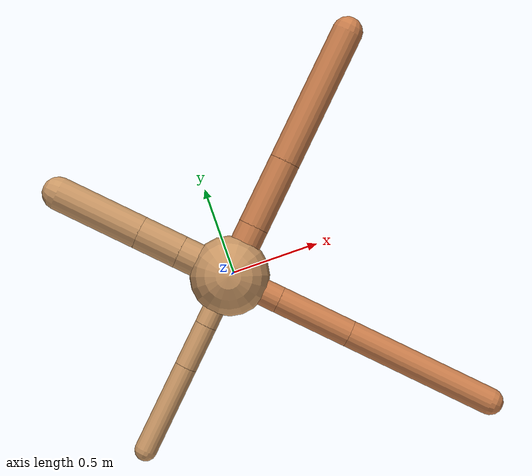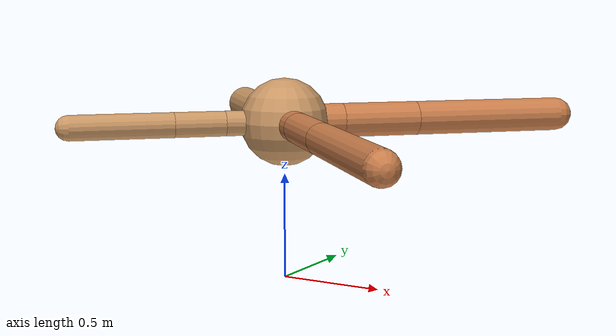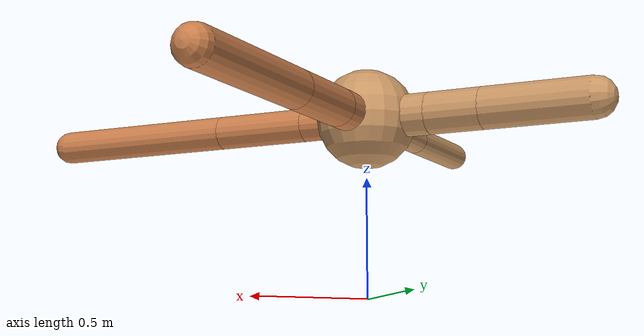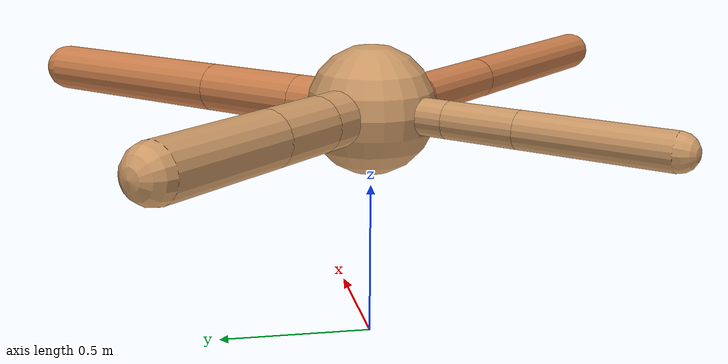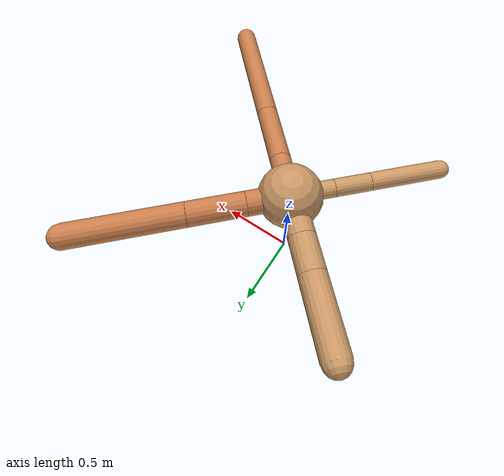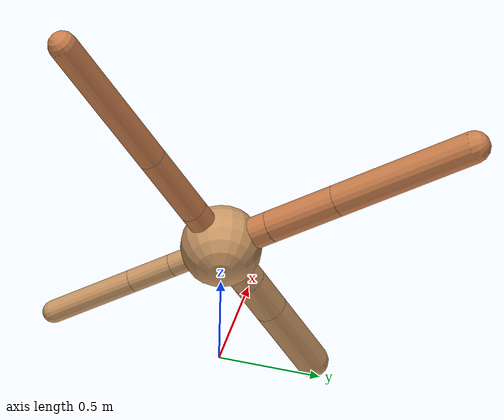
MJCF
<?xml version="1.0" ?>
<mujoco model="ant">

	<compiler angle="degree" coordinate="local" inertiafromgeom="true"/>

	<option integrator="RK4" timestep="0.01"/>

	<custom>

		<numeric data="0.0 0.0 0.55 1.0 0.0 0.0 0.0 0.0 1.0 0.0 -1.0 0.0 -1.0 0.0 1.0" name="init_qpos"/>

	</custom>

	<default>

		<joint armature="1" damping="1" limited="true"/>

		<geom conaffinity="0" condim="3" density="5.0" friction="1.5 0.1 0.1" margin="0.01" rgba="0.8 0.6 0.4 1"/>

	</default>

	<worldbody>

		<body name="torso" pos="0 0 0.75">

			<geom name="torso_geom" pos="0 0 0" size="0.2078230200674009" type="sphere"/>

			<!--joint armature="0" damping="0" limited="false" margin="0.01" name="root" pos="0 0 0" type="free"/-->

			<body name="front_left_leg" pos="0 0 0">

				<geom fromto="0 0 0 0.2 0.2 0" name="aux_1_geom" size="0.0811260889040356" type="capsule" rgba=".8 .5 .3 1"/>

				<body name="aux_1" pos="0.2 0.2 0">

					<joint axis="0 0 1" name="hip_1" pos="0.0 0.0 0.0" range="-40 40" type="hinge"/>

					<geom fromto="0 0 0 0.26237210181341836 0.26237210181341836 0" name="left_leg_geom" size="0.0811260889040356" type="capsule" rgba=".8 .5 .3 1"/>

					<body pos="0.26237210181341836 0.26237210181341836 0" name="front_left_foot">

						<joint axis="-1 1 0" name="ankle_1" pos="0.0 0.0 0.0" range="30 100" type="hinge"/>

						<geom fromto="0 0 0 0.5247442036268367 0.5247442036268367 0" name="left_ankle_geom" size="0.0811260889040356" type="capsule" rgba=".8 .5 .3 1"/>

					</body>

				</body>

			</body>

			<body name="front_right_leg" pos="0 0 0">

				<geom fromto="0 0 0 -0.2 0.2 0" name="aux_2_geom" size="0.0878444285726166" type="capsule"/>

				<body name="aux_2" pos="-0.2 0.2 0">

					<joint axis="0 0 1" name="hip_2" pos="0.0 0.0 0.0" range="-40 40" type="hinge"/>

					<geom fromto="0 0 0 -0.16366157625513156 0.16366157625513156 0" name="right_leg_geom" size="0.0878444285726166" type="capsule"/>

					<body pos="-0.16366157625513156 0.16366157625513156 0" name="front_right_foot">

						<joint axis="1 1 0" name="ankle_2" pos="0.0 0.0 0.0" range="-100 -30" type="hinge"/>

						<geom fromto="0 0 0 -0.3273231525102631 0.3273231525102631 0" name="right_ankle_geom" size="0.0878444285726166" type="capsule"/>

					</body>

				</body>

			</body>

			<body name="left_back_leg" pos="0 0 0">

				<geom fromto="0 0 0 -0.2 -0.2 0" name="aux_3_geom" size="0.05890724419340236" type="capsule"/>

				<body name="aux_3" pos="-0.2 -0.2 0">

					<joint axis="0 0 1" name="hip_3" pos="0.0 0.0 0.0" range="-40 40" type="hinge"/>

					<geom fromto="0 0 0 -0.16772855112344592 -0.16772855112344592 0" name="back_leg_geom" size="0.05890724419340236" type="capsule"/>

					<body pos="-0.16772855112344592 -0.16772855112344592 0" name="left_back_foot">

						<joint axis="-1 1 0" name="ankle_3" pos="0.0 0.0 0.0" range="-100 -30" type="hinge"/>

						<geom fromto="0 0 0 -0.33545710224689185 -0.33545710224689185 0" name="third_ankle_geom" size="0.05890724419340236" type="capsule"/>

					</body>

				</body>

			</body>

			<body name="right_back_leg" pos="0 0 0">

				<geom fromto="0 0 0 0.2 -0.2 0" name="aux_4_geom" size="0.07055802840122577" type="capsule" rgba=".8 .5 .3 1"/>

				<body name="aux_4" pos="0.2 -0.2 0">

					<joint axis="0 0 1" name="hip_4" pos="0.0 0.0 0.0" range="-40 40" type="hinge"/>

					<geom fromto="0 0 0 0.2839078108911274 -0.2839078108911274 0" name="rightback_leg_geom" size="0.07055802840122577" type="capsule" rgba=".8 .5 .3 1"/>

					<body pos="0.2839078108911274 -0.2839078108911274 0" name="right_back_foot">

						<joint axis="1 1 0" name="ankle_4" pos="0.0 0.0 0.0" range="30 100" type="hinge"/>

						<geom fromto="0 0 0 0.5678156217822548 -0.5678156217822548 0" name="fourth_ankle_geom" size="0.07055802840122577" type="capsule" rgba=".8 .5 .3 1"/>

					</body>

				</body>

			</body>

		</body>

	</worldbody>

	<actuator>

		<motor ctrllimited="true" ctrlrange="-1.0 1.0" joint="hip_4" gear="150"/>

		<motor ctrllimited="true" ctrlrange="-1.0 1.0" joint="ankle_4" gear="150"/>

		<motor ctrllimited="true" ctrlrange="-1.0 1.0" joint="hip_1" gear="150"/>

		<motor ctrllimited="true" ctrlrange="-1.0 1.0" joint="ankle_1" gear="150"/>

		<motor ctrllimited="true" ctrlrange="-1.0 1.0" joint="hip_2" gear="150"/>

		<motor ctrllimited="true" ctrlrange="-1.0 1.0" joint="ankle_2" gear="150"/>

		<motor ctrllimited="true" ctrlrange="-1.0 1.0" joint="hip_3" gear="150"/>

		<motor ctrllimited="true" ctrlrange="-1.0 1.0" joint="ankle_3" gear="150"/>

	</actuator>

</mujoco>
